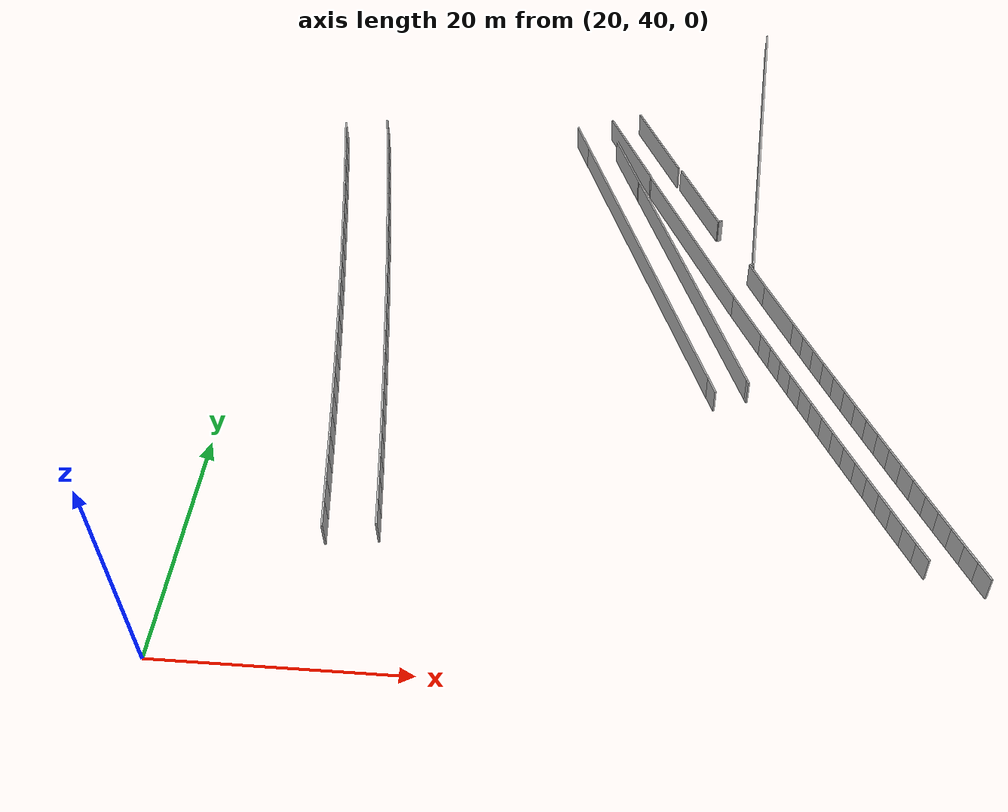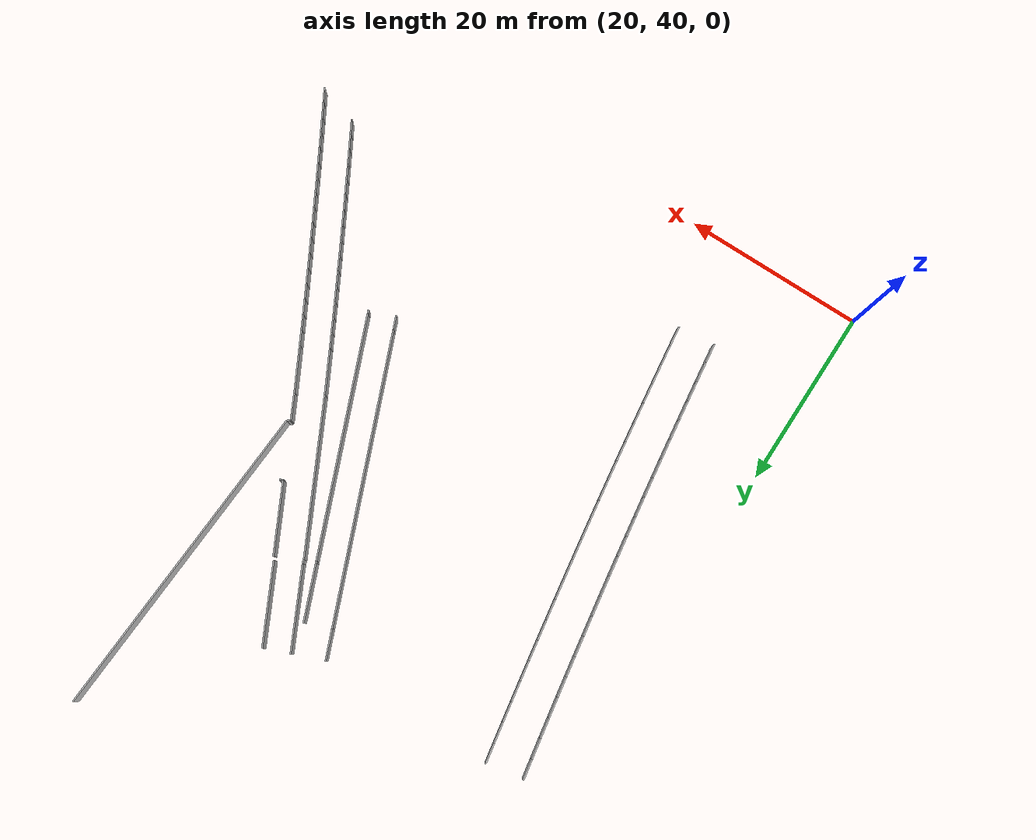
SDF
<sdf version="1.6">
 <model name="sps_2313">
  <static>1</static>
  <allow_auto_disable>0</allow_auto_disable>
  <link name="Wall324">
   <collision name="collision"><geometry><box><size>0.205656 0.15 2.5</size></box></geometry></collision>
   <visual name="visual">
    <geometry><box><size>0.205656 0.15 2.5</size></box></geometry>
    <transparency>0.0</transparency>
   </visual>
   <pose>53.7842 92.6752 1.25 0 0 -1.18594</pose>
  </link>
  <link name="Wall391">
   <collision name="collision"><geometry><box><size>9.32021 0.15 2.5</size></box></geometry></collision>
   <visual name="visual">
    <geometry><box><size>9.32021 0.15 2.5</size></box></geometry>
    <transparency>0.0</transparency>
   </visual>
   <pose>52.8168 97.721 1.25 0 0 -1.11304</pose>
  </link>
  <link name="Wall392">
   <collision name="collision"><geometry><box><size>0.404799 0.15 2.5</size></box></geometry></collision>
   <visual name="visual">
    <geometry><box><size>0.404799 0.15 2.5</size></box></geometry>
    <transparency>0.0</transparency>
   </visual>
   <pose>54.9357 93.3472 1.25 0 0 -1.27284</pose>
  </link>
  <link name="Wall393">
   <collision name="collision"><geometry><box><size>9.08202 0.15 2.5</size></box></geometry></collision>
   <visual name="visual">
    <geometry><box><size>9.08202 0.15 2.5</size></box></geometry>
    <transparency>0.0</transparency>
   </visual>
   <pose>55.5443 98.9319 1.25 0 0 -1.10902</pose>
  </link>
  <link name="Wall394">
   <collision name="collision"><geometry><box><size>31.876 0.15 2.5</size></box></geometry></collision>
   <visual name="visual">
    <geometry><box><size>31.876 0.15 2.5</size></box></geometry>
    <transparency>0.0</transparency>
   </visual>
   <pose>54.5925 82.6699 1.25 0 0 -1.18671</pose>
  </link>
  <link name="Wall395">
   <collision name="collision"><geometry><box><size>1.59371 0.15 2.5</size></box></geometry></collision>
   <visual name="visual">
    <geometry><box><size>1.59371 0.15 2.5</size></box></geometry>
    <transparency>0.0</transparency>
   </visual>
   <pose>60.8632 67.1543 1.25 0 0 -1.18671</pose>
  </link>
  <link name="Wall489">
   <collision name="collision"><geometry><box><size>3.35308 0.15 2.5</size></box></geometry></collision>
   <visual name="visual">
    <geometry><box><size>3.35308 0.15 2.5</size></box></geometry>
    <transparency>0.0</transparency>
   </visual>
   <pose>47.9918 99.0009 1.25 0 0 -1.18641</pose>
  </link>
  <link name="Wall664">
   <collision name="collision"><geometry><box><size>6.2563 0.15 2.5</size></box></geometry></collision>
   <visual name="visual">
    <geometry><box><size>6.2563 0.15 2.5</size></box></geometry>
    <transparency>0.0</transparency>
   </visual>
   <pose>52.5736 95.6708 1.25 0 0 -1.18676</pose>
  </link>
  <link name="Wall665">
   <collision name="collision"><geometry><box><size>26.6269 0.15 2.5</size></box></geometry></collision>
   <visual name="visual">
    <geometry><box><size>26.6269 0.15 2.5</size></box></geometry>
    <transparency>0.0</transparency>
   </visual>
   <pose>58.8117 80.2365 1.25 0 0 -1.1867</pose>
  </link>
  <link name="Wall666">
   <collision name="collision"><geometry><box><size>0.380969 0.15 2.5</size></box></geometry></collision>
   <visual name="visual">
    <geometry><box><size>0.380969 0.15 2.5</size></box></geometry>
    <transparency>0.0</transparency>
   </visual>
   <pose>63.8719 67.7165 1.25 0 0 -1.1867</pose>
  </link>
  <link name="Wall669">
   <collision name="collision"><geometry><box><size>35.9252 0.15 2.5</size></box></geometry></collision>
   <visual name="visual">
    <geometry><box><size>35.9252 0.15 2.5</size></box></geometry>
    <transparency>0.0</transparency>
   </visual>
   <pose>65.6361 99.9612 1.25 0 0 -1.62929</pose>
  </link>
  <link name="Wall4639">
   <collision name="collision"><geometry><box><size>2.25438 0.15 2.5</size></box></geometry></collision>
   <visual name="visual">
    <geometry><box><size>2.25438 0.15 2.5</size></box></geometry>
    <transparency>0.0</transparency>
   </visual>
   <pose>35.24 52.3651 1.25 0 -0 1.69416</pose>
  </link>
  <link name="Wall4640">
   <collision name="collision"><geometry><box><size>2.25481 0.15 2.5</size></box></geometry></collision>
   <visual name="visual">
    <geometry><box><size>2.25481 0.15 2.5</size></box></geometry>
    <transparency>0.0</transparency>
   </visual>
   <pose>34.9599 54.6022 1.25 0 -0 1.69656</pose>
  </link>
  <link name="Wall4641">
   <collision name="collision"><geometry><box><size>2.25443 0.15 2.5</size></box></geometry></collision>
   <visual name="visual">
    <geometry><box><size>2.25443 0.15 2.5</size></box></geometry>
    <transparency>0.0</transparency>
   </visual>
   <pose>34.6745 56.8387 1.25 0 -0 1.69888</pose>
  </link>
  <link name="Wall4642">
   <collision name="collision"><geometry><box><size>2.25477 0.15 2.5</size></box></geometry></collision>
   <visual name="visual">
    <geometry><box><size>2.25477 0.15 2.5</size></box></geometry>
    <transparency>0.0</transparency>
   </visual>
   <pose>34.3838 59.0745 1.25 0 -0 1.70129</pose>
  </link>
  <link name="Wall4643">
   <collision name="collision"><geometry><box><size>2.25467 0.15 2.5</size></box></geometry></collision>
   <visual name="visual">
    <geometry><box><size>2.25467 0.15 2.5</size></box></geometry>
    <transparency>0.0</transparency>
   </visual>
   <pose>34.0878 61.3097 1.25 0 -0 1.70364</pose>
  </link>
  <link name="Wall4644">
   <collision name="collision"><geometry><box><size>2.25459 0.15 2.5</size></box></geometry></collision>
   <visual name="visual">
    <geometry><box><size>2.25459 0.15 2.5</size></box></geometry>
    <transparency>0.0</transparency>
   </visual>
   <pose>33.7865 63.5441 1.25 0 -0 1.70602</pose>
  </link>
  <link name="Wall4645">
   <collision name="collision"><geometry><box><size>2.25452 0.15 2.5</size></box></geometry></collision>
   <visual name="visual">
    <geometry><box><size>2.25452 0.15 2.5</size></box></geometry>
    <transparency>0.0</transparency>
   </visual>
   <pose>33.4799 65.7777 1.25 0 -0 1.70838</pose>
  </link>
  <link name="Wall4646">
   <collision name="collision"><geometry><box><size>2.25467 0.15 2.5</size></box></geometry></collision>
   <visual name="visual">
    <geometry><box><size>2.25467 0.15 2.5</size></box></geometry>
    <transparency>0.0</transparency>
   </visual>
   <pose>33.168 68.0106 1.25 0 -0 1.7108</pose>
  </link>
  <link name="Wall4647">
   <collision name="collision"><geometry><box><size>2.25464 0.15 2.5</size></box></geometry></collision>
   <visual name="visual">
    <geometry><box><size>2.25464 0.15 2.5</size></box></geometry>
    <transparency>0.0</transparency>
   </visual>
   <pose>32.8506 70.2428 1.25 0 -0 1.71321</pose>
  </link>
  <link name="Wall4648">
   <collision name="collision"><geometry><box><size>2.25478 0.15 2.5</size></box></geometry></collision>
   <visual name="visual">
    <geometry><box><size>2.25478 0.15 2.5</size></box></geometry>
    <transparency>0.0</transparency>
   </visual>
   <pose>32.528 72.4743 1.25 0 -0 1.71553</pose>
  </link>
  <link name="Wall4649">
   <collision name="collision"><geometry><box><size>2.25468 0.15 2.5</size></box></geometry></collision>
   <visual name="visual">
    <geometry><box><size>2.25468 0.15 2.5</size></box></geometry>
    <transparency>0.0</transparency>
   </visual>
   <pose>32.2002 74.7051 1.25 0 -0 1.71786</pose>
  </link>
  <link name="Wall4650">
   <collision name="collision"><geometry><box><size>2.25416 0.15 2.5</size></box></geometry></collision>
   <visual name="visual">
    <geometry><box><size>2.25416 0.15 2.5</size></box></geometry>
    <transparency>0.0</transparency>
   </visual>
   <pose>31.8671 76.9348 1.25 0 -0 1.72033</pose>
  </link>
  <link name="Wall4651">
   <collision name="collision"><geometry><box><size>2.2546 0.15 2.5</size></box></geometry></collision>
   <visual name="visual">
    <geometry><box><size>2.2546 0.15 2.5</size></box></geometry>
    <transparency>0.0</transparency>
   </visual>
   <pose>31.5286 79.1636 1.25 0 -0 1.72271</pose>
  </link>
  <link name="Wall4652">
   <collision name="collision"><geometry><box><size>2.25404 0.15 2.5</size></box></geometry></collision>
   <visual name="visual">
    <geometry><box><size>2.25404 0.15 2.5</size></box></geometry>
    <transparency>0.0</transparency>
   </visual>
   <pose>31.1846 81.3915 1.25 0 -0 1.72535</pose>
  </link>
  <link name="Wall4653">
   <collision name="collision"><geometry><box><size>2.25482 0.15 2.5</size></box></geometry></collision>
   <visual name="visual">
    <geometry><box><size>2.25482 0.15 2.5</size></box></geometry>
    <transparency>0.0</transparency>
   </visual>
   <pose>30.8353 83.6187 1.25 0 -0 1.72738</pose>
  </link>
  <link name="Wall4654">
   <collision name="collision"><geometry><box><size>2.25464 0.15 2.5</size></box></geometry></collision>
   <visual name="visual">
    <geometry><box><size>2.25464 0.15 2.5</size></box></geometry>
    <transparency>0.0</transparency>
   </visual>
   <pose>30.4809 85.8454 1.25 0 -0 1.7298</pose>
  </link>
  <link name="Wall4655">
   <collision name="collision"><geometry><box><size>2.25447 0.15 2.5</size></box></geometry></collision>
   <visual name="visual">
    <geometry><box><size>2.25447 0.15 2.5</size></box></geometry>
    <transparency>0.0</transparency>
   </visual>
   <pose>30.1213 88.0711 1.25 0 -0 1.73223</pose>
  </link>
  <link name="Wall4656">
   <collision name="collision"><geometry><box><size>2.2546 0.15 2.5</size></box></geometry></collision>
   <visual name="visual">
    <geometry><box><size>2.2546 0.15 2.5</size></box></geometry>
    <transparency>0.0</transparency>
   </visual>
   <pose>29.7563 90.2959 1.25 0 -0 1.73458</pose>
  </link>
  <link name="Wall4657">
   <collision name="collision"><geometry><box><size>2.25458 0.15 2.5</size></box></geometry></collision>
   <visual name="visual">
    <geometry><box><size>2.25458 0.15 2.5</size></box></geometry>
    <transparency>0.0</transparency>
   </visual>
   <pose>29.3862 92.5199 1.25 0 -0 1.73683</pose>
  </link>
  <link name="Wall4658">
   <collision name="collision"><geometry><box><size>2.25482 0.15 2.5</size></box></geometry></collision>
   <visual name="visual">
    <geometry><box><size>2.25482 0.15 2.5</size></box></geometry>
    <transparency>0.0</transparency>
   </visual>
   <pose>29.0106 94.7431 1.25 0 -0 1.73942</pose>
  </link>
  <link name="Wall4659">
   <collision name="collision"><geometry><box><size>2.2546 0.15 2.5</size></box></geometry></collision>
   <visual name="visual">
    <geometry><box><size>2.2546 0.15 2.5</size></box></geometry>
    <transparency>0.0</transparency>
   </visual>
   <pose>28.6298 96.9654 1.25 0 -0 1.74158</pose>
  </link>
  <link name="Wall4660">
   <collision name="collision"><geometry><box><size>2.25451 0.15 2.5</size></box></geometry></collision>
   <visual name="visual">
    <geometry><box><size>2.25451 0.15 2.5</size></box></geometry>
    <transparency>0.0</transparency>
   </visual>
   <pose>28.2439 99.1867 1.25 0 -0 1.74403</pose>
  </link>
  <link name="Wall6364">
   <collision name="collision"><geometry><box><size>2.24442 0.15 2.5</size></box></geometry></collision>
   <visual name="visual">
    <geometry><box><size>2.24442 0.15 2.5</size></box></geometry>
    <transparency>0.0</transparency>
   </visual>
   <pose>31.1322 51.8554 1.25 0 -0 1.69419</pose>
  </link>
  <link name="Wall6365">
   <collision name="collision"><geometry><box><size>2.24499 0.15 2.5</size></box></geometry></collision>
   <visual name="visual">
    <geometry><box><size>2.24499 0.15 2.5</size></box></geometry>
    <transparency>0.0</transparency>
   </visual>
   <pose>30.8531 54.0827 1.25 0 -0 1.69665</pose>
  </link>
  <link name="Wall6366">
   <collision name="collision"><geometry><box><size>2.24478 0.15 2.5</size></box></geometry></collision>
   <visual name="visual">
    <geometry><box><size>2.24478 0.15 2.5</size></box></geometry>
    <transparency>0.0</transparency>
   </visual>
   <pose>30.5688 56.3095 1.25 0 -0 1.69891</pose>
  </link>
  <link name="Wall6367">
   <collision name="collision"><geometry><box><size>2.24463 0.15 2.5</size></box></geometry></collision>
   <visual name="visual">
    <geometry><box><size>2.24463 0.15 2.5</size></box></geometry>
    <transparency>0.0</transparency>
   </visual>
   <pose>30.2795 58.5355 1.25 0 -0 1.70117</pose>
  </link>
  <link name="Wall6368">
   <collision name="collision"><geometry><box><size>2.24482 0.15 2.5</size></box></geometry></collision>
   <visual name="visual">
    <geometry><box><size>2.24482 0.15 2.5</size></box></geometry>
    <transparency>0.0</transparency>
   </visual>
   <pose>29.9849 60.7608 1.25 0 -0 1.70365</pose>
  </link>
  <link name="Wall6369">
   <collision name="collision"><geometry><box><size>2.24488 0.15 2.5</size></box></geometry></collision>
   <visual name="visual">
    <geometry><box><size>2.24488 0.15 2.5</size></box></geometry>
    <transparency>0.0</transparency>
   </visual>
   <pose>29.6849 62.9855 1.25 0 -0 1.70609</pose>
  </link>
  <link name="Wall6370">
   <collision name="collision"><geometry><box><size>2.24486 0.15 2.5</size></box></geometry></collision>
   <visual name="visual">
    <geometry><box><size>2.24486 0.15 2.5</size></box></geometry>
    <transparency>0.0</transparency>
   </visual>
   <pose>29.3795 65.2095 1.25 0 -0 1.70843</pose>
  </link>
  <link name="Wall6371">
   <collision name="collision"><geometry><box><size>2.24453 0.15 2.5</size></box></geometry></collision>
   <visual name="visual">
    <geometry><box><size>2.24453 0.15 2.5</size></box></geometry>
    <transparency>0.0</transparency>
   </visual>
   <pose>29.069 67.4326 1.25 0 -0 1.71072</pose>
  </link>
  <link name="Wall6372">
   <collision name="collision"><geometry><box><size>2.24489 0.15 2.5</size></box></geometry></collision>
   <visual name="visual">
    <geometry><box><size>2.24489 0.15 2.5</size></box></geometry>
    <transparency>0.0</transparency>
   </visual>
   <pose>28.7531 69.655 1.25 0 -0 1.7132</pose>
  </link>
  <link name="Wall6373">
   <collision name="collision"><geometry><box><size>2.24473 0.15 2.5</size></box></geometry></collision>
   <visual name="visual">
    <geometry><box><size>2.24473 0.15 2.5</size></box></geometry>
    <transparency>0.0</transparency>
   </visual>
   <pose>28.4319 71.8767 1.25 0 -0 1.71555</pose>
  </link>
  <link name="Wall6374">
   <collision name="collision"><geometry><box><size>2.24482 0.15 2.5</size></box></geometry></collision>
   <visual name="visual">
    <geometry><box><size>2.24482 0.15 2.5</size></box></geometry>
    <transparency>0.0</transparency>
   </visual>
   <pose>28.1056 74.0976 1.25 0 -0 1.71788</pose>
  </link>
  <link name="Wall6375">
   <collision name="collision"><geometry><box><size>2.24484 0.15 2.5</size></box></geometry></collision>
   <visual name="visual">
    <geometry><box><size>2.24484 0.15 2.5</size></box></geometry>
    <transparency>0.0</transparency>
   </visual>
   <pose>27.7739 76.3178 1.25 0 -0 1.72032</pose>
  </link>
  <link name="Wall6376">
   <collision name="collision"><geometry><box><size>2.24462 0.15 2.5</size></box></geometry></collision>
   <visual name="visual">
    <geometry><box><size>2.24462 0.15 2.5</size></box></geometry>
    <transparency>0.0</transparency>
   </visual>
   <pose>27.4369 78.5371 1.25 0 -0 1.72259</pose>
  </link>
  <link name="Wall6377">
   <collision name="collision"><geometry><box><size>2.24489 0.15 2.5</size></box></geometry></collision>
   <visual name="visual">
    <geometry><box><size>2.24489 0.15 2.5</size></box></geometry>
    <transparency>0.0</transparency>
   </visual>
   <pose>27.0947 80.7556 1.25 0 -0 1.72516</pose>
  </link>
  <link name="Wall6378">
   <collision name="collision"><geometry><box><size>2.24418 0.15 2.5</size></box></geometry></collision>
   <visual name="visual">
    <geometry><box><size>2.24418 0.15 2.5</size></box></geometry>
    <transparency>0.0</transparency>
   </visual>
   <pose>26.7468 82.973 1.25 0 -0 1.72769</pose>
  </link>
  <link name="Wall6379">
   <collision name="collision"><geometry><box><size>2.24483 0.15 2.5</size></box></geometry></collision>
   <visual name="visual">
    <geometry><box><size>2.24483 0.15 2.5</size></box></geometry>
    <transparency>0.0</transparency>
   </visual>
   <pose>26.3939 85.1896 1.25 0 -0 1.72968</pose>
  </link>
  <link name="Wall6380">
   <collision name="collision"><geometry><box><size>2.24483 0.15 2.5</size></box></geometry></collision>
   <visual name="visual">
    <geometry><box><size>2.24483 0.15 2.5</size></box></geometry>
    <transparency>0.0</transparency>
   </visual>
   <pose>26.0358 87.4057 1.25 0 -0 1.73224</pose>
  </link>
  <link name="Wall6381">
   <collision name="collision"><geometry><box><size>2.24463 0.15 2.5</size></box></geometry></collision>
   <visual name="visual">
    <geometry><box><size>2.24463 0.15 2.5</size></box></geometry>
    <transparency>0.0</transparency>
   </visual>
   <pose>25.6724 89.6208 1.25 0 -0 1.73457</pose>
  </link>
  <link name="Wall6382">
   <collision name="collision"><geometry><box><size>2.24489 0.15 2.5</size></box></geometry></collision>
   <visual name="visual">
    <geometry><box><size>2.24489 0.15 2.5</size></box></geometry>
    <transparency>0.0</transparency>
   </visual>
   <pose>25.3039 91.8351 1.25 0 -0 1.73692</pose>
  </link>
  <link name="Wall6383">
   <collision name="collision"><geometry><box><size>2.2448 0.15 2.5</size></box></geometry></collision>
   <visual name="visual">
    <geometry><box><size>2.2448 0.15 2.5</size></box></geometry>
    <transparency>0.0</transparency>
   </visual>
   <pose>24.93 94.0486 1.25 0 -0 1.73927</pose>
  </link>
  <link name="Wall6384">
   <collision name="collision"><geometry><box><size>2.24468 0.15 2.5</size></box></geometry></collision>
   <visual name="visual">
    <geometry><box><size>2.24468 0.15 2.5</size></box></geometry>
    <transparency>0.0</transparency>
   </visual>
   <pose>24.551 96.2611 1.25 0 -0 1.74171</pose>
  </link>
  <link name="Wall6385">
   <collision name="collision"><geometry><box><size>2.24486 0.15 2.5</size></box></geometry></collision>
   <visual name="visual">
    <geometry><box><size>2.24486 0.15 2.5</size></box></geometry>
    <transparency>0.0</transparency>
   </visual>
   <pose>24.1666 98.4727 1.25 0 -0 1.74407</pose>
  </link>
  <link name="Wall6486">
   <collision name="collision"><geometry><box><size>17.3611 0.15 2.5</size></box></geometry></collision>
   <visual name="visual">
    <geometry><box><size>17.3611 0.15 2.5</size></box></geometry>
    <transparency>0.0</transparency>
   </visual>
   <pose>58.8828 85.3924 1.25 0 0 -1.10642</pose>
  </link>
  <link name="Wall6487">
   <collision name="collision"><geometry><box><size>5.01646 0.15 2.5</size></box></geometry></collision>
   <visual name="visual">
    <geometry><box><size>5.01646 0.15 2.5</size></box></geometry>
    <transparency>0.0</transparency>
   </visual>
   <pose>63.9296 75.4068 1.25 0 0 -1.09038</pose>
  </link>
  <link name="Wall6488">
   <collision name="collision"><geometry><box><size>1.68618 0.15 2.5</size></box></geometry></collision>
   <visual name="visual">
    <geometry><box><size>1.68618 0.15 2.5</size></box></geometry>
    <transparency>0.0</transparency>
   </visual>
   <pose>65.4809 72.4361 1.25 0 0 -1.08717</pose>
  </link>
  <link name="Wall6489">
   <collision name="collision"><geometry><box><size>1.68632 0.15 2.5</size></box></geometry></collision>
   <visual name="visual">
    <geometry><box><size>1.68632 0.15 2.5</size></box></geometry>
    <transparency>0.0</transparency>
   </visual>
   <pose>66.2662 70.9439 1.25 0 0 -1.08554</pose>
  </link>
  <link name="Wall6490">
   <collision name="collision"><geometry><box><size>1.68625 0.15 2.5</size></box></geometry></collision>
   <visual name="visual">
    <geometry><box><size>1.68625 0.15 2.5</size></box></geometry>
    <transparency>0.0</transparency>
   </visual>
   <pose>67.054 69.453 1.25 0 0 -1.08376</pose>
  </link>
  <link name="Wall6491">
   <collision name="collision"><geometry><box><size>1.68621 0.15 2.5</size></box></geometry></collision>
   <visual name="visual">
    <geometry><box><size>1.68621 0.15 2.5</size></box></geometry>
    <transparency>0.0</transparency>
   </visual>
   <pose>67.8444 67.9635 1.25 0 0 -1.0821</pose>
  </link>
  <link name="Wall6492">
   <collision name="collision"><geometry><box><size>1.68612 0.15 2.5</size></box></geometry></collision>
   <visual name="visual">
    <geometry><box><size>1.68612 0.15 2.5</size></box></geometry>
    <transparency>0.0</transparency>
   </visual>
   <pose>68.6374 66.4754 1.25 0 0 -1.08035</pose>
  </link>
  <link name="Wall6493">
   <collision name="collision"><geometry><box><size>1.68625 0.15 2.5</size></box></geometry></collision>
   <visual name="visual">
    <geometry><box><size>1.68625 0.15 2.5</size></box></geometry>
    <transparency>0.0</transparency>
   </visual>
   <pose>69.4328 64.9886 1.25 0 0 -1.07875</pose>
  </link>
  <link name="Wall6494">
   <collision name="collision"><geometry><box><size>1.68606 0.15 2.5</size></box></geometry></collision>
   <visual name="visual">
    <geometry><box><size>1.68606 0.15 2.5</size></box></geometry>
    <transparency>0.0</transparency>
   </visual>
   <pose>70.2307 63.5032 1.25 0 0 -1.07697</pose>
  </link>
  <link name="Wall6495">
   <collision name="collision"><geometry><box><size>1.6862 0.15 2.5</size></box></geometry></collision>
   <visual name="visual">
    <geometry><box><size>1.6862 0.15 2.5</size></box></geometry>
    <transparency>0.0</transparency>
   </visual>
   <pose>71.0312 62.0192 1.25 0 0 -1.07529</pose>
  </link>
  <link name="Wall6496">
   <collision name="collision"><geometry><box><size>1.68613 0.15 2.5</size></box></geometry></collision>
   <visual name="visual">
    <geometry><box><size>1.68613 0.15 2.5</size></box></geometry>
    <transparency>0.0</transparency>
   </visual>
   <pose>71.8341 60.5365 1.25 0 0 -1.07362</pose>
  </link>
  <link name="Wall6497">
   <collision name="collision"><geometry><box><size>1.68623 0.15 2.5</size></box></geometry></collision>
   <visual name="visual">
    <geometry><box><size>1.68623 0.15 2.5</size></box></geometry>
    <transparency>0.0</transparency>
   </visual>
   <pose>72.6395 59.0551 1.25 0 0 -1.072</pose>
  </link>
  <link name="Wall6498">
   <collision name="collision"><geometry><box><size>1.68616 0.15 2.5</size></box></geometry></collision>
   <visual name="visual">
    <geometry><box><size>1.68616 0.15 2.5</size></box></geometry>
    <transparency>0.0</transparency>
   </visual>
   <pose>73.4473 57.575 1.25 0 0 -1.07041</pose>
  </link>
  <link name="Wall6499">
   <collision name="collision"><geometry><box><size>1.68638 0.15 2.5</size></box></geometry></collision>
   <visual name="visual">
    <geometry><box><size>1.68638 0.15 2.5</size></box></geometry>
    <transparency>0.0</transparency>
   </visual>
   <pose>74.2577 56.0962 1.25 0 0 -1.06867</pose>
  </link>
  <link name="Wall6500">
   <collision name="collision"><geometry><box><size>1.68617 0.15 2.5</size></box></geometry></collision>
   <visual name="visual">
    <geometry><box><size>1.68617 0.15 2.5</size></box></geometry>
    <transparency>0.0</transparency>
   </visual>
   <pose>75.0706 54.6188 1.25 0 0 -1.06686</pose>
  </link>
  <link name="Wall6501">
   <collision name="collision"><geometry><box><size>1.68615 0.15 2.5</size></box></geometry></collision>
   <visual name="visual">
    <geometry><box><size>1.68615 0.15 2.5</size></box></geometry>
    <transparency>0.0</transparency>
   </visual>
   <pose>75.886 53.1429 1.25 0 0 -1.06524</pose>
  </link>
  <link name="Wall6502">
   <collision name="collision"><geometry><box><size>1.68607 0.15 2.5</size></box></geometry></collision>
   <visual name="visual">
    <geometry><box><size>1.68607 0.15 2.5</size></box></geometry>
    <transparency>0.0</transparency>
   </visual>
   <pose>76.704 51.6685 1.25 0 0 -1.06331</pose>
  </link>
  <link name="Wall7387">
   <collision name="collision"><geometry><box><size>7.95327 0.15 2.5</size></box></geometry></collision>
   <visual name="visual">
    <geometry><box><size>7.95327 0.15 2.5</size></box></geometry>
    <transparency>0.0</transparency>
   </visual>
   <pose>59.6243 91.0012 1.25 0 0 -1.10462</pose>
  </link>
  <link name="Wall7388">
   <collision name="collision"><geometry><box><size>0.399638 0.15 2.5</size></box></geometry></collision>
   <visual name="visual">
    <geometry><box><size>0.399638 0.15 2.5</size></box></geometry>
    <transparency>0.0</transparency>
   </visual>
   <pose>61.5901 87.5387 1.25 0 -0 0.466175</pose>
  </link>
  <link name="Wall9317">
   <collision name="collision"><geometry><box><size>1.68081 0.15 2.5</size></box></geometry></collision>
   <visual name="visual">
    <geometry><box><size>1.68081 0.15 2.5</size></box></geometry>
    <transparency>0.0</transparency>
   </visual>
   <pose>81.1389 50.2875 1.25 0 -0 2.08139</pose>
  </link>
  <link name="Wall9318">
   <collision name="collision"><geometry><box><size>1.68071 0.15 2.5</size></box></geometry></collision>
   <visual name="visual">
    <geometry><box><size>1.68071 0.15 2.5</size></box></geometry>
    <transparency>0.0</transparency>
   </visual>
   <pose>80.3188 51.7546 1.25 0 -0 2.07964</pose>
  </link>
  <link name="Wall9319">
   <collision name="collision"><geometry><box><size>1.68092 0.15 2.5</size></box></geometry></collision>
   <visual name="visual">
    <geometry><box><size>1.68092 0.15 2.5</size></box></geometry>
    <transparency>0.0</transparency>
   </visual>
   <pose>79.5012 53.2231 1.25 0 -0 2.07807</pose>
  </link>
  <link name="Wall9320">
   <collision name="collision"><geometry><box><size>1.68069 0.15 2.5</size></box></geometry></collision>
   <visual name="visual">
    <geometry><box><size>1.68069 0.15 2.5</size></box></geometry>
    <transparency>0.0</transparency>
   </visual>
   <pose>78.6858 54.6929 1.25 0 -0 2.07641</pose>
  </link>
  <link name="Wall9321">
   <collision name="collision"><geometry><box><size>1.68081 0.15 2.5</size></box></geometry></collision>
   <visual name="visual">
    <geometry><box><size>1.68081 0.15 2.5</size></box></geometry>
    <transparency>0.0</transparency>
   </visual>
   <pose>77.8731 56.1641 1.25 0 -0 2.07458</pose>
  </link>
  <link name="Wall9322">
   <collision name="collision"><geometry><box><size>1.68074 0.15 2.5</size></box></geometry></collision>
   <visual name="visual">
    <geometry><box><size>1.68074 0.15 2.5</size></box></geometry>
    <transparency>0.0</transparency>
   </visual>
   <pose>77.0627 57.6366 1.25 0 -0 2.07324</pose>
  </link>
  <link name="Wall9323">
   <collision name="collision"><geometry><box><size>1.68086 0.15 2.5</size></box></geometry></collision>
   <visual name="visual">
    <geometry><box><size>1.68086 0.15 2.5</size></box></geometry>
    <transparency>0.0</transparency>
   </visual>
   <pose>76.2548 59.1105 1.25 0 -0 2.07117</pose>
  </link>
  <link name="Wall9324">
   <collision name="collision"><geometry><box><size>1.68074 0.15 2.5</size></box></geometry></collision>
   <visual name="visual">
    <geometry><box><size>1.68074 0.15 2.5</size></box></geometry>
    <transparency>0.0</transparency>
   </visual>
   <pose>75.4496 60.5859 1.25 0 -0 2.0696</pose>
  </link>
  <link name="Wall9325">
   <collision name="collision"><geometry><box><size>1.68095 0.15 2.5</size></box></geometry></collision>
   <visual name="visual">
    <geometry><box><size>1.68095 0.15 2.5</size></box></geometry>
    <transparency>0.0</transparency>
   </visual>
   <pose>74.6468 62.0626 1.25 0 -0 2.068</pose>
  </link>
  <link name="Wall9326">
   <collision name="collision"><geometry><box><size>1.68071 0.15 2.5</size></box></geometry></collision>
   <visual name="visual">
    <geometry><box><size>1.68071 0.15 2.5</size></box></geometry>
    <transparency>0.0</transparency>
   </visual>
   <pose>73.8464 63.5406 1.25 0 -0 2.06622</pose>
  </link>
  <link name="Wall9327">
   <collision name="collision"><geometry><box><size>1.68076 0.15 2.5</size></box></geometry></collision>
   <visual name="visual">
    <geometry><box><size>1.68076 0.15 2.5</size></box></geometry>
    <transparency>0.0</transparency>
   </visual>
   <pose>73.0485 65.0199 1.25 0 -0 2.06459</pose>
  </link>
  <link name="Wall9328">
   <collision name="collision"><geometry><box><size>1.68084 0.15 2.5</size></box></geometry></collision>
   <visual name="visual">
    <geometry><box><size>1.68084 0.15 2.5</size></box></geometry>
    <transparency>0.0</transparency>
   </visual>
   <pose>72.2531 66.5006 1.25 0 -0 2.06292</pose>
  </link>
  <link name="Wall9329">
   <collision name="collision"><geometry><box><size>1.68084 0.15 2.5</size></box></geometry></collision>
   <visual name="visual">
    <geometry><box><size>1.68084 0.15 2.5</size></box></geometry>
    <transparency>0.0</transparency>
   </visual>
   <pose>71.4603 67.9827 1.25 0 -0 2.06114</pose>
  </link>
  <link name="Wall9330">
   <collision name="collision"><geometry><box><size>1.68099 0.15 2.5</size></box></geometry></collision>
   <visual name="visual">
    <geometry><box><size>1.68099 0.15 2.5</size></box></geometry>
    <transparency>0.0</transparency>
   </visual>
   <pose>70.6699 69.4662 1.25 0 -0 2.05953</pose>
  </link>
  <link name="Wall9331">
   <collision name="collision"><geometry><box><size>1.68065 0.15 2.5</size></box></geometry></collision>
   <visual name="visual">
    <geometry><box><size>1.68065 0.15 2.5</size></box></geometry>
    <transparency>0.0</transparency>
   </visual>
   <pose>69.8819 70.9509 1.25 0 -0 2.05783</pose>
  </link>
  <link name="Wall9332">
   <collision name="collision"><geometry><box><size>1.68064 0.15 2.5</size></box></geometry></collision>
   <visual name="visual">
    <geometry><box><size>1.68064 0.15 2.5</size></box></geometry>
    <transparency>0.0</transparency>
   </visual>
   <pose>69.0967 72.4368 1.25 0 -0 2.05611</pose>
  </link>
  <link name="Wall9333">
   <collision name="collision"><geometry><box><size>1.68083 0.15 2.5</size></box></geometry></collision>
   <visual name="visual">
    <geometry><box><size>1.68083 0.15 2.5</size></box></geometry>
    <transparency>0.0</transparency>
   </visual>
   <pose>68.3139 73.9241 1.25 0 -0 2.05445</pose>
  </link>
  <link name="Wall9334">
   <collision name="collision"><geometry><box><size>5.09196 0.15 2.5</size></box></geometry></collision>
   <visual name="visual">
    <geometry><box><size>5.09196 0.15 2.5</size></box></geometry>
    <transparency>0.0</transparency>
   </visual>
   <pose>66.7468 76.9261 1.25 0 -0 2.05103</pose>
  </link>
  <link name="Wall9335">
   <collision name="collision"><geometry><box><size>2.98401 0.15 2.5</size></box></geometry></collision>
   <visual name="visual">
    <geometry><box><size>2.98401 0.15 2.5</size></box></geometry>
    <transparency>0.0</transparency>
   </visual>
   <pose>64.8996 80.5167 1.25 0 -0 2.03725</pose>
  </link>
  <link name="Wall9336">
   <collision name="collision"><geometry><box><size>0.400185 0.15 2.5</size></box></geometry></collision>
   <visual name="visual">
    <geometry><box><size>0.400185 0.15 2.5</size></box></geometry>
    <transparency>0.0</transparency>
   </visual>
   <pose>64.4074 81.9393 1.25 0 -0 0.466512</pose>
  </link>
 </model>
</sdf>
